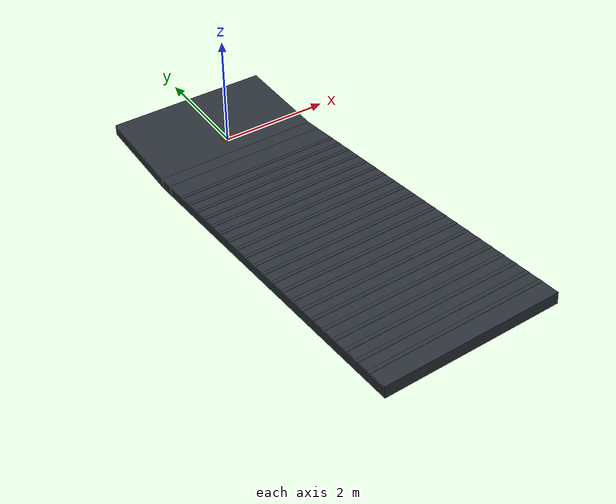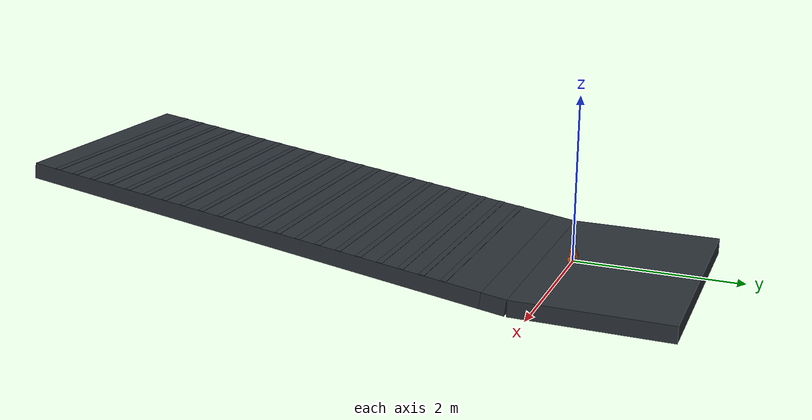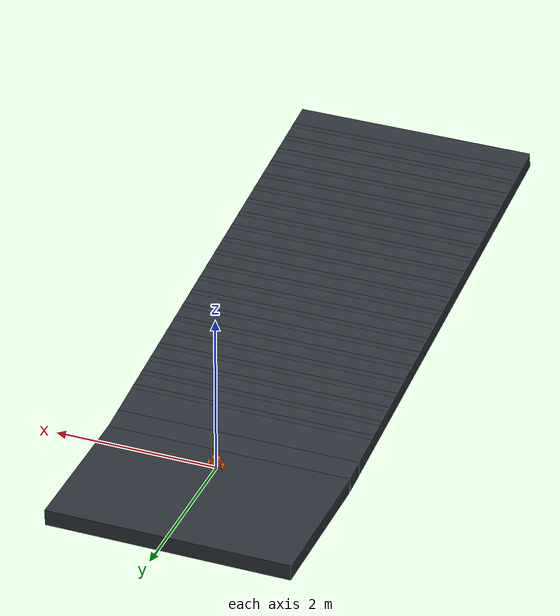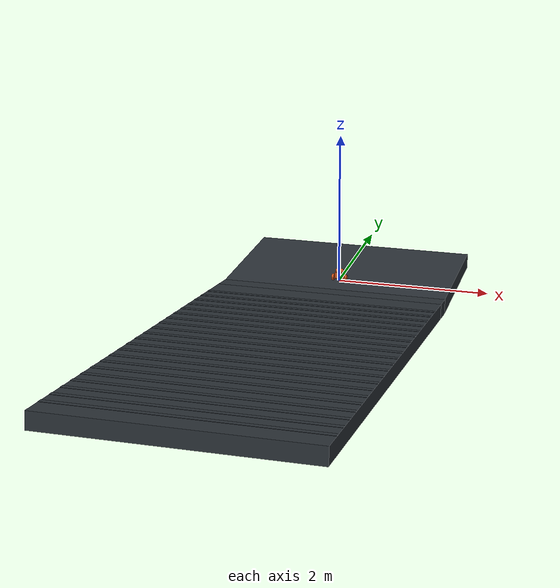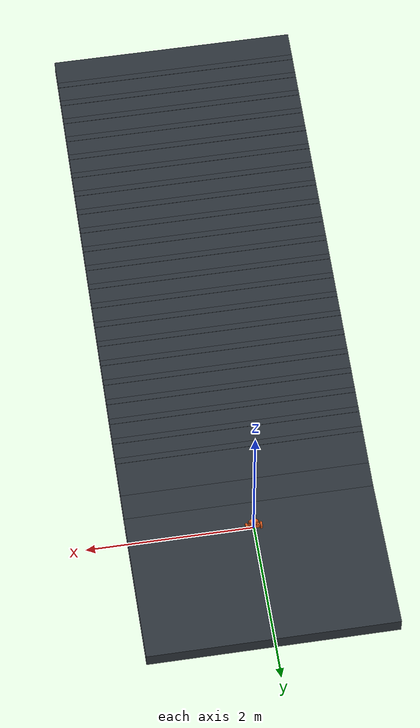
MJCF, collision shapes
<mujoco model="Stage4B rtrain_029_p08p0">
  <compiler angle="radian" meshdir="../../../../assets/upstream_local" />
  <option timestep="0.001" integrator="implicitfast" gravity="0 0 -9.81" />
  <statistic center="0 0 0.05" extent="0.28" />
  <default>
    <default class="visual">
      <geom contype="0" conaffinity="0" group="2" />
    </default>
    <default class="collision">
      <geom group="3" rgba="0.85 0.35 0.12 0.25" solref="0.005 1" solimp="0.9 0.95 0.001" />
    </default>
  </default>
  <asset>
    <texture name="ground_tex" type="2d" builtin="checker" rgb1="0.22 0.25 0.28" rgb2="0.12 0.14 0.16" width="256" height="256" />
    <material name="ground_mat" texture="ground_tex" texrepeat="4 4" reflectance="0.15" />
    <mesh name="main_frame_mesh" file="main_frame.stl" scale="0.001 0.001 0.001" />
    <mesh name="wheel_base_mesh" file="wheel_base.stl" scale="0.001 0.001 0.001" />
    <mesh name="cover_mesh" file="cover.stl" scale="0.001 0.001 0.001" />
    <mesh name="motor_left_mesh" file="motor_left.stl" scale="0.001 0.001 0.001" />
    <mesh name="motor_right_mesh" file="motor_right.stl" scale="0.001 0.001 0.001" />
    <mesh name="mc33926_mesh" file="mc33926.stl" scale="0.001 0.001 0.001" />
    <mesh name="wheel_mesh" file="wheel.stl" scale="0.001 0.001 0.001" />
    <mesh name="adapter_left_mesh" file="adapter_left.stl" scale="0.001 0.001 0.001" />
    <mesh name="adapter_right_mesh" file="adapter_right.stl" scale="0.001 0.001 0.001" />
  </asset>
  <worldbody>
    <light pos="0 -0.5 0.8" dir="0 0.6 -1" diffuse="0.8 0.8 0.8" />
    <geom name="terrain_flat" type="box" pos="0 0.575 -0.1" size="1.5 0.925 0.1" material="ground_mat" friction="0.71037104 0.005 0.0001" condim="3" />
    <geom name="terrain_transition" type="box" pos="0 -0.512457520407 -0.0781508417301" euler="-0.13962634016 0 0" size="1.5 0.15 0.1" material="ground_mat" friction="0.71037104 0.005 0.0001" condim="3" />
    <geom name="terrain_constant_grade" type="box" pos="0 -3.63180193694 0.360244426294" euler="-0.13962634016 0 0" size="1.5 3 0.1" material="ground_mat" friction="0.71037104 0.005 0.0001" condim="3" />
    <geom name="terrain_rough_00" type="box" pos="0 -1.09244053533 0.10623349499" euler="-0.13962634016 0 0" size="1.5 0.0351452168462 0.00187188633924" material="ground_mat" friction="0.71037104 0.005 0.0001" condim="3" />
    <geom name="terrain_rough_01" type="box" pos="0 -1.35059454105 0.142514674436" euler="-0.13962634016 0 0" size="1.5 0.0351452168462 0.00187188633924" material="ground_mat" friction="0.71037104 0.005 0.0001" condim="3" />
    <geom name="terrain_rough_02" type="box" pos="0 -1.60874854678 0.178795853882" euler="-0.13962634016 0 0" size="1.5 0.0351452168462 0.00187188633924" material="ground_mat" friction="0.71037104 0.005 0.0001" condim="3" />
    <geom name="terrain_rough_03" type="box" pos="0 -1.8669025525 0.215077033328" euler="-0.13962634016 0 0" size="1.5 0.0351452168462 0.00187188633924" material="ground_mat" friction="0.71037104 0.005 0.0001" condim="3" />
    <geom name="terrain_rough_04" type="box" pos="0 -2.12505655822 0.251358212774" euler="-0.13962634016 0 0" size="1.5 0.0351452168462 0.00187188633924" material="ground_mat" friction="0.71037104 0.005 0.0001" condim="3" />
    <geom name="terrain_rough_05" type="box" pos="0 -2.38321056394 0.28763939222" euler="-0.13962634016 0 0" size="1.5 0.0351452168462 0.00187188633924" material="ground_mat" friction="0.71037104 0.005 0.0001" condim="3" />
    <geom name="terrain_rough_06" type="box" pos="0 -2.64136456967 0.323920571666" euler="-0.13962634016 0 0" size="1.5 0.0351452168462 0.00187188633924" material="ground_mat" friction="0.71037104 0.005 0.0001" condim="3" />
    <geom name="terrain_rough_07" type="box" pos="0 -2.89951857539 0.360201751112" euler="-0.13962634016 0 0" size="1.5 0.0351452168462 0.00187188633924" material="ground_mat" friction="0.71037104 0.005 0.0001" condim="3" />
    <geom name="terrain_rough_08" type="box" pos="0 -3.15767258111 0.396482930558" euler="-0.13962634016 0 0" size="1.5 0.0351452168462 0.00187188633924" material="ground_mat" friction="0.71037104 0.005 0.0001" condim="3" />
    <geom name="terrain_rough_09" type="box" pos="0 -3.41582658683 0.432764110005" euler="-0.13962634016 0 0" size="1.5 0.0351452168462 0.00187188633924" material="ground_mat" friction="0.71037104 0.005 0.0001" condim="3" />
    <geom name="terrain_rough_10" type="box" pos="0 -3.67398059256 0.469045289451" euler="-0.13962634016 0 0" size="1.5 0.0351452168462 0.00187188633924" material="ground_mat" friction="0.71037104 0.005 0.0001" condim="3" />
    <geom name="terrain_rough_11" type="box" pos="0 -3.93213459828 0.505326468897" euler="-0.13962634016 0 0" size="1.5 0.0351452168462 0.00187188633924" material="ground_mat" friction="0.71037104 0.005 0.0001" condim="3" />
    <geom name="terrain_rough_12" type="box" pos="0 -4.190288604 0.541607648343" euler="-0.13962634016 0 0" size="1.5 0.0351452168462 0.00187188633924" material="ground_mat" friction="0.71037104 0.005 0.0001" condim="3" />
    <geom name="terrain_rough_13" type="box" pos="0 -4.44844260973 0.577888827789" euler="-0.13962634016 0 0" size="1.5 0.0351452168462 0.00187188633924" material="ground_mat" friction="0.71037104 0.005 0.0001" condim="3" />
    <geom name="terrain_rough_14" type="box" pos="0 -4.70659661545 0.614170007235" euler="-0.13962634016 0 0" size="1.5 0.0351452168462 0.00187188633924" material="ground_mat" friction="0.71037104 0.005 0.0001" condim="3" />
    <geom name="terrain_rough_15" type="box" pos="0 -4.96475062117 0.650451186681" euler="-0.13962634016 0 0" size="1.5 0.0351452168462 0.00187188633924" material="ground_mat" friction="0.71037104 0.005 0.0001" condim="3" />
    <geom name="terrain_rough_16" type="box" pos="0 -5.22290462689 0.686732366127" euler="-0.13962634016 0 0" size="1.5 0.0351452168462 0.00187188633924" material="ground_mat" friction="0.71037104 0.005 0.0001" condim="3" />
    <geom name="terrain_rough_17" type="box" pos="0 -5.48105863262 0.723013545573" euler="-0.13962634016 0 0" size="1.5 0.0351452168462 0.00187188633924" material="ground_mat" friction="0.71037104 0.005 0.0001" condim="3" />
    <geom name="terrain_rough_18" type="box" pos="0 -5.73921263834 0.759294725019" euler="-0.13962634016 0 0" size="1.5 0.0351452168462 0.00187188633924" material="ground_mat" friction="0.71037104 0.005 0.0001" condim="3" />
    <geom name="terrain_rough_19" type="box" pos="0 -5.99736664406 0.795575904465" euler="-0.13962634016 0 0" size="1.5 0.0351452168462 0.00187188633924" material="ground_mat" friction="0.71037104 0.005 0.0001" condim="3" />
    <geom name="terrain_rough_20" type="box" pos="0 -6.25552064978 0.831857083911" euler="-0.13962634016 0 0" size="1.5 0.0351452168462 0.00187188633924" material="ground_mat" friction="0.71037104 0.005 0.0001" condim="3" />
    <body name="chassis" pos="0 0 0.043">
      <freejoint name="root" />
      <inertial pos="0.0001592717873 -0.001394466535 0.03368627387" mass="0.8173706489" fullinertia="0.0009508052638 0.001636345835 0.0009938057434 -1.163464906e-07 -4.840496598e-06 3.454944565e-05" />
      <geom name="main_frame_visual" class="visual" type="mesh" mesh="main_frame_mesh" rgba="0.12 0.42 0.72 1" />
      <geom name="wheel_base_visual" class="visual" type="mesh" mesh="wheel_base_mesh" rgba="0.95 0.50 0.10 1" />
      <geom name="cover_visual" class="visual" type="mesh" mesh="cover_mesh" rgba="0.18 0.72 0.32 0.72" />
      <geom name="motor_left_visual" class="visual" type="mesh" mesh="motor_left_mesh" rgba="0.45 0.47 0.50 1" />
      <geom name="motor_right_visual" class="visual" type="mesh" mesh="motor_right_mesh" rgba="0.45 0.47 0.50 1" />
      <geom name="mc33926_visual" class="visual" type="mesh" mesh="mc33926_mesh" rgba="0.08 0.36 0.18 1" />
      <geom name="battery_1_visual" class="visual" type="box" pos="0 -0.012 0.038" size="0.035 0.007 0.025" rgba="0.15 0.25 0.75 1" />
      <geom name="battery_2_visual" class="visual" type="box" pos="0 0.012 0.038" size="0.035 0.007 0.025" rgba="0.15 0.25 0.75 1" />
      <geom name="electronics_lump_visual" class="visual" type="box" pos="0 -0.024 0.067" size="0.035 0.006 0.0425" rgba="0.10 0.42 0.20 0.65" />
      <geom name="wheel_base_collision" class="collision" type="box" pos="0 0.0005 0.0042" size="0.074 0.0201 0.0198" />
      <geom name="lower_chassis_collision" class="collision" type="box" pos="0.001 -0.0015 0.038" size="0.0595 0.0325 0.038" />
      <geom name="upper_chassis_collision" class="collision" type="capsule" fromto="-0.024 -0.0015 0.096 0.026 -0.0015 0.096" size="0.033" />
      <site name="imu_site" type="box" pos="0 0 0.020" quat="1 0 0 0" size="0.004 0.003 0.001" rgba="1 0.15 0.05 1" />
      <body name="left_wheel" pos="-0.0885 0 0">
        <joint name="left_wheel_hinge" type="hinge" axis="1 0 0" damping="0.002" frictionloss="0.002" />
        <inertial pos="0.001407549168 -2.310217342e-08 4.024972882e-05" mass="0.1051" fullinertia="8.559060347e-05 4.760138372e-05 4.763051958e-05 2.677568832e-11 -3.525425309e-08 -1.463149106e-11" />
        <geom name="left_wheel_visual" class="visual" type="mesh" mesh="wheel_mesh" rgba="0.04 0.05 0.06 1" />
        <geom name="left_adapter_visual" class="visual" type="mesh" mesh="adapter_left_mesh" rgba="0.12 0.48 0.82 1" />
        <geom name="left_wheel_collision" class="collision" type="cylinder" size="0.042 0.012" quat="0.7071067812 0 0.7071067812 0" friction="0.71037104 0.005 0.0001" />
      </body>
      <body name="right_wheel" pos="0.0885 0 0">
        <joint name="right_wheel_hinge" type="hinge" axis="1 0 0" damping="0.002" frictionloss="0.002" />
        <inertial pos="-0.001407437868 -2.310217342e-08 -4.019113045e-05" mass="0.1051" fullinertia="8.559060397e-05 4.760141714e-05 4.763055251e-05 -2.601653908e-11 -3.526339188e-08 1.57007511e-11" />
        <geom name="right_wheel_visual" class="visual" type="mesh" mesh="wheel_mesh" rgba="0.04 0.05 0.06 1" />
        <geom name="right_adapter_visual" class="visual" type="mesh" mesh="adapter_right_mesh" rgba="0.12 0.48 0.82 1" />
        <geom name="right_wheel_collision" class="collision" type="cylinder" size="0.042 0.012" quat="0.7071067812 0 0.7071067812 0" friction="0.71037104 0.005 0.0001" />
      </body>
    </body>
  </worldbody>
  <actuator>
    <motor name="left_wheel_torque" joint="left_wheel_hinge" gear="1" ctrllimited="true" ctrlrange="-0.63 0.63" forcelimited="true" forcerange="-0.63 0.63" />
    <motor name="right_wheel_torque" joint="right_wheel_hinge" gear="1" ctrllimited="true" ctrlrange="-0.63 0.63" forcelimited="true" forcerange="-0.63 0.63" />
  </actuator>
  <sensor>
    <accelerometer name="imu_accelerometer" site="imu_site" />
    <gyro name="imu_gyro" site="imu_site" />
    <jointpos name="left_wheel_angle" joint="left_wheel_hinge" />
    <jointpos name="right_wheel_angle" joint="right_wheel_hinge" />
  </sensor>
  <keyframe>
    <key name="upright" qpos="0 0 0.043 1 0 0 0 0 0" />
  </keyframe>
</mujoco>
